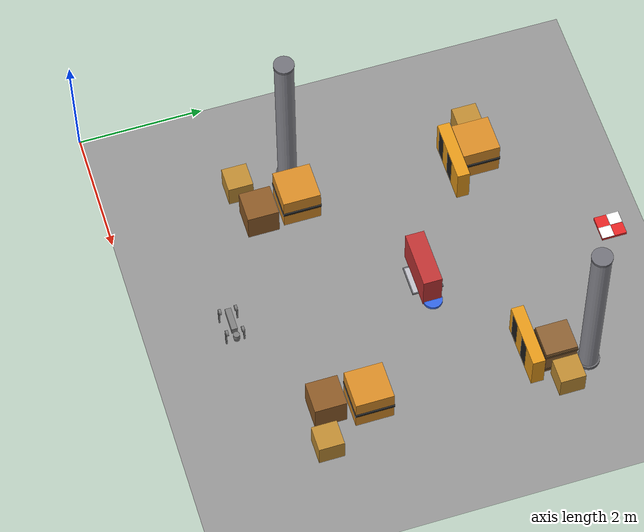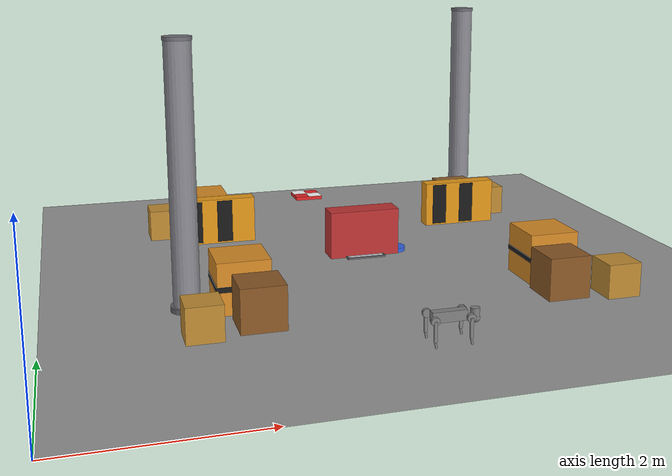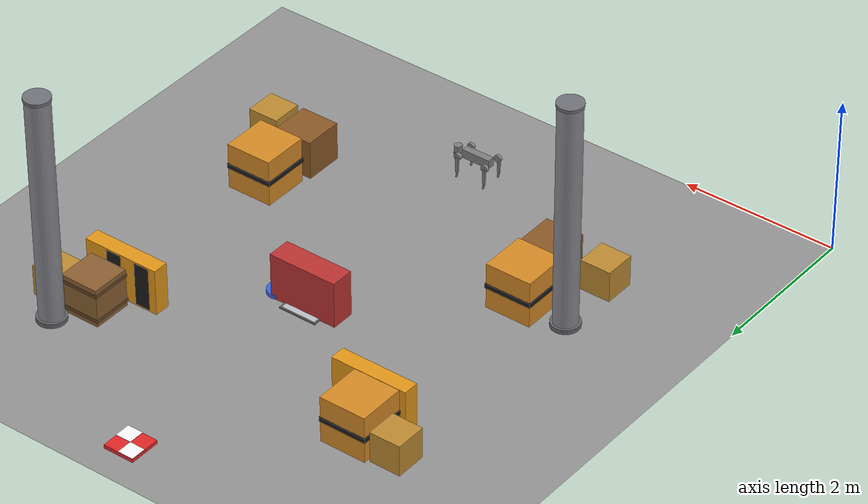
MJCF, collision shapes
<mujoco model="go2 room navigation">
  <include file="scene_room.xml"/>
  <include file="go2.xml"/>

  <worldbody>
    <geom name="obs_center_bar" type="box" pos="4.0 4.4 0.3" size="0.45 0.15 0.3"
          rgba="0.75 0.2 0.2 1"/>
  </worldbody>

  <keyframe>
    <!-- Robot spawns in the room's far-left corner (0.7, 0.7), facing +y
         toward the goal marker at (4, 7.46). Joint order matches go2.xml's
         own "home" keyframe. -->
    <key name="start"
         qpos="0.7 0.7 0.27 1 0 0 0 0 0.9 -1.8 0 0.9 -1.8 0 0.9 -1.8 0 0.9 -1.8"
         ctrl="0 0.9 -1.8 0 0.9 -1.8 0 0.9 -1.8 0 0.9 -1.8"/>
  </keyframe>
</mujoco>

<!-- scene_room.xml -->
<mujoco model="drift_world">
  <compiler assetdir="assets" angle="degree"/>

  <visual>
    <headlight ambient="0.3 0.3 0.3" diffuse="0.2 0.2 0.2" specular="0.05 0.05 0.05"/>
  </visual>

  <asset>
    <texture type="skybox" colorspace="auto" builtin="gradient" rgb1="0.56 0.65 0.75" rgb2="0.88 0.92 0.96" width="256" height="1536"/>
    <texture type="2d" colorspace="auto" name="tex_ground" builtin="checker" mark="edge" rgb1="0.55 0.55 0.55" rgb2="0.62 0.62 0.62" markrgb="0.5 0.5 0.5" width="256" height="256"/>
    <material name="mat_ground" texture="tex_ground" texrepeat="4 4" reflectance="0.05"/>
    <material name="mat_wall" rgba="0.91 0.9 0.87 1"/>
    <material name="mat_fence" rgba="0.85 0.72 0.1 0.55"/>
  </asset>

  <worldbody>
    <geom name="floor" size="4 4 0.05" pos="4 4 0" type="plane" material="mat_ground"/>
    <light name="key" pos="4 4 4.8" dir="0.250627 0.350878 -0.902258" type="directional" diffuse="0.75 0.75 0.75" specular="0.1 0.1 0.1"/>
    <body name="nav_floor_grid_tile" pos="4 4.4 0">
      <geom name="nav_floor_grid_tile_fill" size="0.24 0.24 0.01" pos="0 0 0.01" type="box" rgba="0.75 0.75 0.78 1" contype="0" conaffinity="0"/>
      <geom name="nav_floor_grid_tile_edge_n" size="0.2495 0.01 0.0102" pos="0 0.24 0.0112" type="box" rgba="0.4 0.4 0.42 1" contype="0" conaffinity="0"/>
      <geom name="nav_floor_grid_tile_edge_s" size="0.2495 0.01 0.0102" pos="0 -0.24 0.0112" type="box" rgba="0.4 0.4 0.42 1" contype="0" conaffinity="0"/>
      <geom name="nav_floor_grid_tile_edge_e" size="0.01 0.2495 0.0102" pos="0.24 0 0.0112" type="box" rgba="0.4 0.4 0.42 1" contype="0" conaffinity="0"/>
      <geom name="nav_floor_grid_tile_edge_w" size="0.01 0.2495 0.0107" pos="-0.24 0 0.0112" type="box" rgba="0.4 0.4 0.42 1" contype="0" conaffinity="0"/>
    </body>
    <body name="nav_goal_marker" pos="4 7.46 0">
      <geom name="nav_goal_marker_base" size="0.2 0.2 0.025" pos="0 0 0.025" type="box" rgba="0.9 0.15 0.15 1" contype="0" conaffinity="0"/>
      <geom name="nav_goal_marker_check1" size="0.1 0.1 0.0027" pos="-0.1 0.1 0.0532" type="box" rgba="1 1 1 1" contype="0" conaffinity="0"/>
      <geom name="nav_goal_marker_check2" size="0.1 0.1 0.0027" pos="0.1 -0.1 0.0532" type="box" rgba="1 1 1 1" contype="0" conaffinity="0"/>
    </body>
    <body name="nav_path_waypoint_marker" pos="4.44 4.415 0">
      <geom name="nav_path_waypoint_marker_base" size="0.15 0.025" pos="0 0 0.025" type="cylinder" rgba="0.2 0.4 0.9 1" contype="0" conaffinity="0"/>
    </body>
    <body name="nav_box_obstacle_small_1" pos="1.625 2.1336 0">
      <geom name="nav_box_obstacle_small_1_body" size="0.2 0.2 0.2" pos="0 0 0.2" type="box" rgba="0.75 0.55 0.2 1"/>
    </body>
    <body name="nav_box_obstacle_small_2" pos="6.375 2.1336 0">
      <geom name="nav_box_obstacle_small_2_body" size="0.2 0.2 0.2" pos="0 0 0.2" type="box" rgba="0.75 0.55 0.2 1"/>
    </body>
    <body name="nav_box_obstacle_small_3" pos="1.625 5.911 0">
      <geom name="nav_box_obstacle_small_3_body" size="0.2 0.2 0.2" pos="0 0 0.2" type="box" rgba="0.75 0.55 0.2 1"/>
    </body>
    <body name="nav_box_obstacle_small_4" pos="6.375 5.911 0">
      <geom name="nav_box_obstacle_small_4_body" size="0.2 0.2 0.2" pos="0 0 0.2" type="box" rgba="0.75 0.55 0.2 1"/>
    </body>
    <body name="nav_box_obstacle_medium_1" pos="2.155 2.9392 0">
      <geom name="nav_box_obstacle_medium_1_body" size="0.3 0.3 0.3" pos="0 0 0.3" type="box" rgba="0.85 0.55 0.15 1"/>
      <geom name="nav_box_obstacle_medium_1_band" size="0.31 0.31 0.03" pos="0 0 0.3" type="box" rgba="0.1 0.1 0.1 1"/>
    </body>
    <body name="nav_box_obstacle_medium_2" pos="5.845 2.9392 0">
      <geom name="nav_box_obstacle_medium_2_body" size="0.3 0.3 0.3" pos="0 0 0.3" type="box" rgba="0.85 0.55 0.15 1"/>
      <geom name="nav_box_obstacle_medium_2_band" size="0.31 0.31 0.03" pos="0 0 0.3" type="box" rgba="0.1 0.1 0.1 1"/>
    </body>
    <body name="nav_box_obstacle_medium_3" pos="2.155 5.8608 0">
      <geom name="nav_box_obstacle_medium_3_body" size="0.3 0.3 0.3" pos="0 0 0.3" type="box" rgba="0.85 0.55 0.15 1"/>
      <geom name="nav_box_obstacle_medium_3_band" size="0.31 0.31 0.03" pos="0 0 0.3" type="box" rgba="0.1 0.1 0.1 1"/>
    </body>
    <body name="nav_crate_obstacle_1" pos="5.87 5.883 0">
      <geom name="nav_crate_obstacle_1_body" size="0.25 0.25 0.25" pos="0 0 0.25" type="box" rgba="0.55 0.38 0.2 1"/>
      <geom name="nav_crate_obstacle_1_slat1" size="0.26 0.26 0.02" pos="0 0 0.42" type="box" rgba="0.4 0.28 0.15 1"/>
      <geom name="nav_crate_obstacle_1_slat2" size="0.26 0.26 0.02" pos="0 0 0.08" type="box" rgba="0.4 0.28 0.15 1"/>
    </body>
    <body name="nav_crate_obstacle_2" pos="2.25 2.3 0">
      <geom name="nav_crate_obstacle_2_body" size="0.25 0.25 0.25" pos="0 0 0.25" type="box" rgba="0.55 0.35 0.15 1"/>
      <geom name="nav_crate_obstacle_2_lid" size="0.2495 0.2495 0.0198" pos="0 0 0.4798" type="box" rgba="0.45 0.28 0.12 1"/>
      <geom name="nav_crate_obstacle_2_slat_h" size="0.2495 0.02 0.02" pos="0 0 0.25" type="box" rgba="0.4 0.24 0.1 1"/>
    </body>
    <body name="nav_crate_obstacle_3" pos="5.75 2.3 0">
      <geom name="nav_crate_obstacle_3_body" size="0.25 0.25 0.25" pos="0 0 0.25" type="box" rgba="0.55 0.35 0.15 1"/>
      <geom name="nav_crate_obstacle_3_lid" size="0.2495 0.2495 0.0198" pos="0 0 0.4798" type="box" rgba="0.45 0.28 0.12 1"/>
      <geom name="nav_crate_obstacle_3_slat_h" size="0.2495 0.02 0.02" pos="0 0 0.25" type="box" rgba="0.4 0.24 0.1 1"/>
    </body>
    <body name="nav_wall_barrier_short_1" pos="2.2776 5.4561 0">
      <geom name="nav_wall_barrier_short_1_panel" size="0.5 0.1 0.3" pos="0 0 0.3" type="box" rgba="0.9 0.6 0.1 1"/>
      <geom name="nav_wall_barrier_short_1_stripe1" size="0.1 0.101 0.28" pos="-0.3 0 0.3" type="box" rgba="0.1 0.1 0.1 1"/>
      <geom name="nav_wall_barrier_short_1_stripe2" size="0.1 0.101 0.28" pos="0.1 0 0.3" type="box" rgba="0.1 0.1 0.1 1"/>
    </body>
    <body name="nav_wall_barrier_short_2" pos="5.75 5.4693 0">
      <geom name="nav_wall_barrier_short_2_panel" size="0.5 0.1 0.3" pos="0 0 0.3" type="box" rgba="0.9 0.6 0.1 1"/>
      <geom name="nav_wall_barrier_short_2_stripe1" size="0.1 0.101 0.28" pos="-0.3 0 0.3" type="box" rgba="0.1 0.1 0.1 1"/>
      <geom name="nav_wall_barrier_short_2_stripe2" size="0.1 0.101 0.28" pos="0.1 0 0.3" type="box" rgba="0.1 0.1 0.1 1"/>
    </body>
    <body name="nav_cylindrical_pillar_1" pos="1.566 2.96 0">
      <geom name="nav_cylindrical_pillar_1_shaft" size="0.15 1.4995" pos="0 0 1.5" type="cylinder" rgba="0.55 0.55 0.58 1"/>
      <geom name="nav_cylindrical_pillar_1_base" size="0.18 0.03" pos="0 0 0.03" type="cylinder" rgba="0.4 0.4 0.42 1"/>
      <geom name="nav_cylindrical_pillar_1_cap" size="0.16 0.02" pos="0 0 2.98" type="cylinder" rgba="0.45 0.45 0.48 1"/>
    </body>
    <body name="nav_cylindrical_pillar_2" pos="6.12 6.326 0">
      <geom name="nav_cylindrical_pillar_2_shaft" size="0.15 1.4995" pos="0 0 1.5" type="cylinder" rgba="0.55 0.55 0.58 1"/>
      <geom name="nav_cylindrical_pillar_2_base" size="0.18 0.03" pos="0 0 0.03" type="cylinder" rgba="0.4 0.4 0.42 1"/>
      <geom name="nav_cylindrical_pillar_2_cap" size="0.16 0.02" pos="0 0 2.98" type="cylinder" rgba="0.45 0.45 0.48 1"/>
    </body>
  </worldbody>
</mujoco>

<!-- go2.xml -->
<mujoco model="go2">
  <compiler angle="radian" meshdir="assets" autolimits="true"/>

  <option cone="elliptic" impratio="100"/>

  <default>
    <default class="go2">
      <geom friction="0.6" margin="0.001" condim="1"/>
      <joint axis="0 1 0" damping="2" armature="0.01" frictionloss="0.2"/>
      <motor ctrlrange="-23.7 23.7"/>
      <default class="abduction">
        <joint axis="1 0 0" range="-1.0472 1.0472"/>
      </default>
      <default class="hip">
        <default class="front_hip">
          <joint range="-1.5708 3.4907"/>
        </default>
        <default class="back_hip">
          <joint range="-0.5236 4.5379"/>
        </default>
      </default>
      <default class="knee">
        <joint range="-2.7227 -0.83776"/>
        <motor ctrlrange="-45.43 45.43"/>
      </default>
      <default class="visual">
        <geom type="mesh" contype="0" conaffinity="0" group="2"/>
      </default>
      <default class="collision">
        <geom group="3"/>
        <default class="foot">
          <geom size="0.022" pos="-0.002 0 -0.213" priority="1" solimp="0.015 1 0.022" condim="6"
            friction="0.8 0.02 0.01"/>
        </default>
      </default>
    </default>
  </default>

  <asset>
    <material name="metal" rgba=".9 .95 .95 1"/>
    <material name="black" rgba="0 0 0 1"/>
    <material name="white" rgba="1 1 1 1"/>
    <material name="gray" rgba="0.671705 0.692426 0.774270 1"/>

    <mesh file="base_0.obj"/>
    <mesh file="base_1.obj"/>
    <mesh file="base_2.obj"/>
    <mesh file="base_3.obj"/>
    <mesh file="base_4.obj"/>
    <mesh file="hip_0.obj"/>
    <mesh file="hip_1.obj"/>
    <mesh file="thigh_0.obj"/>
    <mesh file="thigh_1.obj"/>
    <mesh file="thigh_mirror_0.obj"/>
    <mesh file="thigh_mirror_1.obj"/>
    <mesh file="calf_0.obj"/>
    <mesh file="calf_1.obj"/>
    <mesh file="calf_mirror_0.obj"/>
    <mesh file="calf_mirror_1.obj"/>
    <mesh file="foot.obj"/>
  </asset>

  <worldbody>
    <body name="trunk" pos="4 1.34 0.27">
      <inertial pos="0.021112 0 -0.005366" quat="-0.000543471 0.713435 -0.00173769 0.700719" mass="6.921"
        diaginertia="0.107027 0.0980771 0.0244531"/>
      <freejoint/>
      <geom mesh="base_0" material="black" class="visual"/>
      <geom mesh="base_1" material="black" class="visual"/>
      <geom mesh="base_2" material="black" class="visual"/>
      <geom mesh="base_3" material="white" class="visual"/>
      <geom mesh="base_4" material="gray" class="visual"/>
      <geom size="0.1881 0.04675 0.057" type="box" class="collision"/>
      <geom size="0.05 0.045" pos="0.285 0 0.01" type="cylinder" class="collision"/>
      <geom size="0.047" pos="0.293 0 -0.06" class="collision"/>
      <site name="imu" pos="-0.02557 0 0.04232"/>
      <body name="FL_hip" pos="0.1934 0.0465 0">
        <inertial pos="-0.0054 0.00194 -0.000105" quat="0.497014 0.499245 0.505462 0.498237" mass="0.678"
          diaginertia="0.00088403 0.000596003 0.000479967"/>
        <joint name="FL_hip_joint" class="abduction"/>
        <geom mesh="hip_0" material="metal" class="visual"/>
        <geom mesh="hip_1" material="gray" class="visual"/>
        <geom size="0.046 0.02" pos="0 0.08 0" quat="1 1 0 0" type="cylinder" class="collision"/>
        <body name="FL_thigh" pos="0 0.0955 0">
          <inertial pos="-0.00374 -0.0223 -0.0327" quat="0.829533 0.0847635 -0.0200632 0.551623" mass="1.152"
            diaginertia="0.00594973 0.00584149 0.000878787"/>
          <joint name="FL_thigh_joint" class="front_hip"/>
          <geom mesh="thigh_0" material="metal" class="visual"/>
          <geom mesh="thigh_1" material="gray" class="visual"/>
          <geom size="0.1065 0.01225 0.017" pos="0 0 -0.1065" quat="0.707107 0 0.707107 0" type="box"
            class="collision"/>
          <body name="FL_calf" pos="0 0 -0.213">
            <inertial pos="0.00629595 -0.000622121 -0.141417" quat="0.710672 0.00154099 -0.00450087 0.703508"
              mass="0.241352" diaginertia="0.0014901 0.00146356 5.31397e-05"/>
            <joint name="FL_calf_joint" class="knee"/>
            <geom mesh="calf_0" material="gray" class="visual"/>
            <geom mesh="calf_1" material="black" class="visual"/>
            <geom size="0.012 0.06" pos="0.008 0 -0.06" quat="0.994493 0 -0.104807 0" type="cylinder"
              class="collision"/>
            <geom size="0.011 0.0325" pos="0.02 0 -0.148" quat="0.999688 0 0.0249974 0" type="cylinder"
              class="collision"/>
            <geom pos="0 0 -0.213" mesh="foot" class="visual" material="black"/>
            <geom name="FL" class="foot"/>
          </body>
        </body>
      </body>
      <body name="FR_hip" pos="0.1934 -0.0465 0">
        <inertial pos="-0.0054 -0.00194 -0.000105" quat="0.498237 0.505462 0.499245 0.497014" mass="0.678"
          diaginertia="0.00088403 0.000596003 0.000479967"/>
        <joint name="FR_hip_joint" class="abduction"/>
        <geom mesh="hip_0" material="metal" class="visual" quat="4.63268e-05 1 0 0"/>
        <geom mesh="hip_1" material="gray" class="visual" quat="4.63268e-05 1 0 0"/>
        <geom size="0.046 0.02" pos="0 -0.08 0" quat="0.707107 0.707107 0 0" type="cylinder" class="collision"/>
        <body name="FR_thigh" pos="0 -0.0955 0">
          <inertial pos="-0.00374 0.0223 -0.0327" quat="0.551623 -0.0200632 0.0847635 0.829533" mass="1.152"
            diaginertia="0.00594973 0.00584149 0.000878787"/>
          <joint name="FR_thigh_joint" class="front_hip"/>
          <geom mesh="thigh_mirror_0" material="metal" class="visual"/>
          <geom mesh="thigh_mirror_1" material="gray" class="visual"/>
          <geom size="0.1065 0.01225 0.017" pos="0 0 -0.1065" quat="0.707107 0 0.707107 0" type="box"
            class="collision"/>
          <body name="FR_calf" pos="0 0 -0.213">
            <inertial pos="0.00629595 0.000622121 -0.141417" quat="0.703508 -0.00450087 0.00154099 0.710672"
              mass="0.241352" diaginertia="0.0014901 0.00146356 5.31397e-05"/>
            <joint name="FR_calf_joint" class="knee"/>
            <geom mesh="calf_mirror_0" material="gray" class="visual"/>
            <geom mesh="calf_mirror_1" material="black" class="visual"/>
            <geom size="0.013 0.06" pos="0.01 0 -0.06" quat="0.995004 0 -0.0998334 0" type="cylinder"
              class="collision"/>
            <geom size="0.011 0.0325" pos="0.02 0 -0.148" quat="0.999688 0 0.0249974 0" type="cylinder"
              class="collision"/>
            <geom pos="0 0 -0.213" mesh="foot" class="visual" material="black"/>
            <geom name="FR" class="foot"/>
          </body>
        </body>
      </body>
      <body name="RL_hip" pos="-0.1934 0.0465 0">
        <inertial pos="0.0054 0.00194 -0.000105" quat="0.505462 0.498237 0.497014 0.499245" mass="0.678"
          diaginertia="0.00088403 0.000596003 0.000479967"/>
        <joint name="RL_hip_joint" class="abduction"/>
        <geom mesh="hip_0" material="metal" class="visual" quat="4.63268e-05 0 1 0"/>
        <geom mesh="hip_1" material="gray" class="visual" quat="4.63268e-05 0 1 0"/>
        <geom size="0.046 0.02" pos="0 0.08 0" quat="0.707107 0.707107 0 0" type="cylinder" class="collision"/>
        <body name="RL_thigh" pos="0 0.0955 0">
          <inertial pos="-0.00374 -0.0223 -0.0327" quat="0.829533 0.0847635 -0.0200632 0.551623" mass="1.152"
            diaginertia="0.00594973 0.00584149 0.000878787"/>
          <joint name="RL_thigh_joint" class="back_hip"/>
          <geom mesh="thigh_0" material="metal" class="visual"/>
          <geom mesh="thigh_1" material="gray" class="visual"/>
          <geom size="0.1065 0.01225 0.017" pos="0 0 -0.1065" quat="0.707107 0 0.707107 0" type="box"
            class="collision"/>
          <body name="RL_calf" pos="0 0 -0.213">
            <inertial pos="0.00629595 -0.000622121 -0.141417" quat="0.710672 0.00154099 -0.00450087 0.703508"
              mass="0.241352" diaginertia="0.0014901 0.00146356 5.31397e-05"/>
            <joint name="RL_calf_joint" class="knee"/>
            <geom mesh="calf_0" material="gray" class="visual"/>
            <geom mesh="calf_1" material="black" class="visual"/>
            <geom size="0.013 0.06" pos="0.01 0 -0.06" quat="0.995004 0 -0.0998334 0" type="cylinder"
              class="collision"/>
            <geom size="0.011 0.0325" pos="0.02 0 -0.148" quat="0.999688 0 0.0249974 0" type="cylinder"
              class="collision"/>
            <geom pos="0 0 -0.213" mesh="foot" class="visual" material="black"/>
            <geom name="RL" class="foot"/>
          </body>
        </body>
      </body>
      <body name="RR_hip" pos="-0.1934 -0.0465 0">
        <inertial pos="0.0054 -0.00194 -0.000105" quat="0.499245 0.497014 0.498237 0.505462" mass="0.678"
          diaginertia="0.00088403 0.000596003 0.000479967"/>
        <joint name="RR_hip_joint" class="abduction"/>
        <geom mesh="hip_0" material="metal" class="visual" quat="2.14617e-09 4.63268e-05 4.63268e-05 -1"/>
        <geom mesh="hip_1" material="gray" class="visual" quat="2.14617e-09 4.63268e-05 4.63268e-05 -1"/>
        <geom size="0.046 0.02" pos="0 -0.08 0" quat="0.707107 0.707107 0 0" type="cylinder" class="collision"/>
        <body name="RR_thigh" pos="0 -0.0955 0">
          <inertial pos="-0.00374 0.0223 -0.0327" quat="0.551623 -0.0200632 0.0847635 0.829533" mass="1.152"
            diaginertia="0.00594973 0.00584149 0.000878787"/>
          <joint name="RR_thigh_joint" class="back_hip"/>
          <geom mesh="thigh_mirror_0" material="metal" class="visual"/>
          <geom mesh="thigh_mirror_1" material="gray" class="visual"/>
          <geom size="0.1065 0.01225 0.017" pos="0 0 -0.1065" quat="0.707107 0 0.707107 0" type="box"
            class="collision"/>
          <body name="RR_calf" pos="0 0 -0.213">
            <inertial pos="0.00629595 0.000622121 -0.141417" quat="0.703508 -0.00450087 0.00154099 0.710672"
              mass="0.241352" diaginertia="0.0014901 0.00146356 5.31397e-05"/>
            <joint name="RR_calf_joint" class="knee"/>
            <geom mesh="calf_mirror_0" material="gray" class="visual"/>
            <geom mesh="calf_mirror_1" material="black" class="visual"/>
            <geom size="0.013 0.06" pos="0.01 0 -0.06" quat="0.995004 0 -0.0998334 0" type="cylinder"
              class="collision"/>
            <geom size="0.011 0.0325" pos="0.02 0 -0.148" quat="0.999688 0 0.0249974 0" type="cylinder"
              class="collision"/>
            <geom pos="0 0 -0.213" mesh="foot" class="visual" material="black"/>
            <geom name="RR" class="foot"/>
          </body>
        </body>
      </body>
    </body>
  </worldbody>

  <actuator>
    <motor class="abduction" name="FL_hip" joint="FL_hip_joint"/>
    <motor class="hip" name="FL_thigh" joint="FL_thigh_joint"/>
    <motor class="knee" name="FL_calf" joint="FL_calf_joint"/>
    <motor class="abduction" name="FR_hip" joint="FR_hip_joint"/>
    <motor class="hip" name="FR_thigh" joint="FR_thigh_joint"/>
    <motor class="knee" name="FR_calf" joint="FR_calf_joint"/>
    <motor class="abduction" name="RL_hip" joint="RL_hip_joint"/>
    <motor class="hip" name="RL_thigh" joint="RL_thigh_joint"/>
    <motor class="knee" name="RL_calf" joint="RL_calf_joint"/>
    <motor class="abduction" name="RR_hip" joint="RR_hip_joint"/>
    <motor class="hip" name="RR_thigh" joint="RR_thigh_joint"/>
    <motor class="knee" name="RR_calf" joint="RR_calf_joint"/>
  </actuator>

  <sensor>
    <accelerometer name="imu_accel" site="imu"/>
    <gyro name="imu_gyro" site="imu"/>
    <framequat name="imu_quat" objtype="site" objname="imu"/>
  </sensor>

  <keyframe>
    <key name="home" qpos="0 0 0.27 1 0 0 0 0 0.9 -1.8 0 0.9 -1.8 0 0.9 -1.8 0 0.9 -1.8"
      ctrl="0 0.9 -1.8 0 0.9 -1.8 0 0.9 -1.8 0 0.9 -1.8"/>
  </keyframe>
</mujoco>
